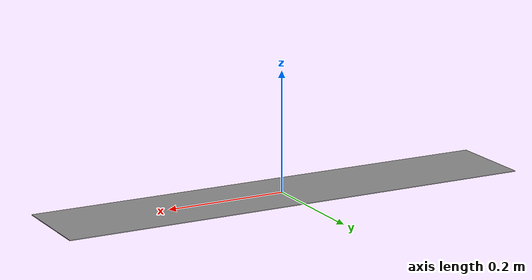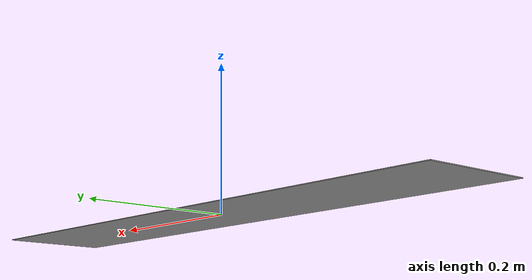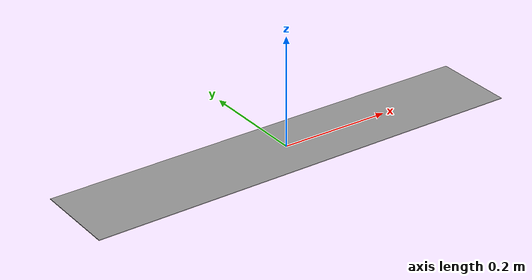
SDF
<?xml version='1.0'?>
<sdf version='1.6'>
  <model name='largada'>
    <link name='Wall_1'>
      <pose frame=''>0 0 0 0 -0 3.14159</pose>
      <self_collide>0</self_collide>
      <kinematic>0</kinematic>
      <gravity>1</gravity>
      <inertial>
        <mass>1</mass>
        <pose frame=''>0 0 0 0 -0 0</pose>
        <inertia>
          <ixx>1</ixx>
          <ixy>0</ixy>
          <ixz>0</ixz>
          <iyy>1</iyy>
          <iyz>0</iyz>
          <izz>1</izz>
        </inertia>
      </inertial>
      <visual name='Wall_1_Visual'>
        <pose frame=''>0 0 0.0005 0 -0 0</pose>
        <geometry>
          <box>
            <size>0.8 0.15 0.001</size>
          </box>
        </geometry>
        <material>
          <script>
            <uri>file://media/materials/scripts/gazebo.material</uri>
            <name>Gazebo/Grey</name>
          </script>
          <ambient>1 1 1 1</ambient>
          <diffuse>0.7 0.7 0.7 1</diffuse>
          <specular>0.01 0.01 0.01 1</specular>
          <emissive>0 0 0 1</emissive>
          <shader type='vertex'>
            <normal_map>__default__</normal_map>
          </shader>
        </material>
        <cast_shadows>1</cast_shadows>
        <transparency>0</transparency>
      </visual>
      <collision name='Wall_1_Collision'>
        <laser_retro>0</laser_retro>
        <max_contacts>10</max_contacts>
        <pose frame=''>0 0 0.0005 0 -0 0</pose>
        <geometry>
          <box>
            <size>2.8 0.15 0.001</size>
          </box>
        </geometry>
        <surface>
          <friction>
            <ode>
              <mu>1</mu>
              <mu2>1</mu2>
              <fdir1>0 0 0</fdir1>
              <slip1>0</slip1>
              <slip2>0</slip2>
            </ode>
            <torsional>
              <coefficient>1</coefficient>
              <patch_radius>0</patch_radius>
              <surface_radius>0</surface_radius>
              <use_patch_radius>1</use_patch_radius>
              <ode>
                <slip>0</slip>
              </ode>
            </torsional>
          </friction>
          <bounce>
            <restitution_coefficient>0</restitution_coefficient>
            <threshold>1e+06</threshold>
          </bounce>
          <contact>
            <collide_without_contact>0</collide_without_contact>
            <collide_without_contact_bitmask>1</collide_without_contact_bitmask>
            <collide_bitmask>1</collide_bitmask>
            <ode>
              <soft_cfm>0</soft_cfm>
              <soft_erp>0.2</soft_erp>
              <kp>1e+13</kp>
              <kd>1</kd>
              <max_vel>0.01</max_vel>
              <min_depth>0</min_depth>
            </ode>
            <bullet>
              <split_impulse>1</split_impulse>
              <split_impulse_penetration_threshold>-0.01</split_impulse_penetration_threshold>
              <soft_cfm>0</soft_cfm>
              <soft_erp>0.2</soft_erp>
              <kp>1e+13</kp>
              <kd>1</kd>
            </bullet>
          </contact>
        </surface>
      </collision>
    </link>
    <static>1</static>
    <allow_auto_disable>1</allow_auto_disable>
  </model>
</sdf>
